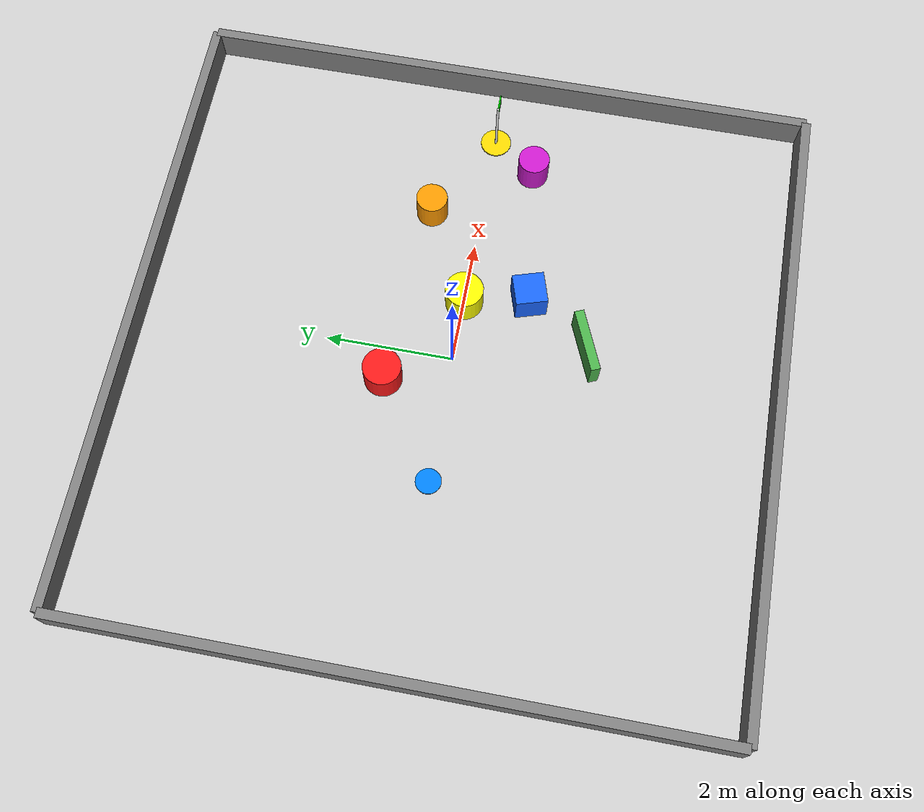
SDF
<?xml version="1.0" ?>
<sdf version="1.6">
  <world name="obstacle_world">

    <!-- Physics -->
    <physics type="ode">
      <max_step_size>0.001</max_step_size>
      <real_time_factor>1</real_time_factor>
    </physics>

    <!-- Lighting -->
    <include>
      <uri>model://sun</uri>
    </include>

    <!-- Ground plane -->
    <include>
      <uri>model://ground_plane</uri>
    </include>

    <!-- ============ Boundary walls ============ -->
    <!-- North wall -->
    <model name="wall_north">
      <static>true</static>
      <pose>0 5 0.25 0 0 0</pose>
      <link name="link">
        <collision name="collision">
          <geometry><box><size>10 0.15 0.5</size></box></geometry>
        </collision>
        <visual name="visual">
          <geometry><box><size>10 0.15 0.5</size></box></geometry>
          <material>
            <ambient>0.5 0.5 0.5 1</ambient>
          </material>
        </visual>
      </link>
    </model>

    <!-- South wall -->
    <model name="wall_south">
      <static>true</static>
      <pose>0 -5 0.25 0 0 0</pose>
      <link name="link">
        <collision name="collision">
          <geometry><box><size>10 0.15 0.5</size></box></geometry>
        </collision>
        <visual name="visual">
          <geometry><box><size>10 0.15 0.5</size></box></geometry>
          <material>
            <ambient>0.5 0.5 0.5 1</ambient>
          </material>
        </visual>
      </link>
    </model>

    <!-- East wall -->
    <model name="wall_east">
      <static>true</static>
      <pose>5 0 0.25 0 0 1.5708</pose>
      <link name="link">
        <collision name="collision">
          <geometry><box><size>10 0.15 0.5</size></box></geometry>
        </collision>
        <visual name="visual">
          <geometry><box><size>10 0.15 0.5</size></box></geometry>
          <material>
            <ambient>0.5 0.5 0.5 1</ambient>
          </material>
        </visual>
      </link>
    </model>

    <!-- West wall -->
    <model name="wall_west">
      <static>true</static>
      <pose>-5 0 0.25 0 0 1.5708</pose>
      <link name="link">
        <collision name="collision">
          <geometry><box><size>10 0.15 0.5</size></box></geometry>
        </collision>
        <visual name="visual">
          <geometry><box><size>10 0.15 0.5</size></box></geometry>
          <material>
            <ambient>0.5 0.5 0.5 1</ambient>
          </material>
        </visual>
      </link>
    </model>

    <!-- ============ Goal marker (visible flag at goal) ============ -->
    <model name="goal_flag">
      <static>true</static>
      <pose>4.0 0.0 0 0 0 0</pose>
      <link name="link">
        <!-- Pole -->
        <visual name="pole">
          <pose>0 0 0.5 0 0 0</pose>
          <geometry><cylinder><radius>0.02</radius><length>1.0</length></cylinder></geometry>
          <material>
            <ambient>0.9 0.9 0.9 1</ambient>
            <diffuse>0.9 0.9 0.9 1</diffuse>
            <emissive>0.3 0.3 0.3 1</emissive>
          </material>
        </visual>
        <!-- Flag -->
        <visual name="flag">
          <pose>0.15 0 0.85 0 0 0</pose>
          <geometry><box><size>0.3 0.02 0.2</size></box></geometry>
          <material>
            <ambient>0.0 1.0 0.0 1</ambient>
            <diffuse>0.0 1.0 0.0 1</diffuse>
            <emissive>0.0 0.6 0.0 1</emissive>
          </material>
        </visual>
        <!-- Base disc -->
        <visual name="base">
          <pose>0 0 0.01 0 0 0</pose>
          <geometry><cylinder><radius>0.25</radius><length>0.02</length></cylinder></geometry>
          <material>
            <ambient>1.0 0.84 0.0 1</ambient>
            <diffuse>1.0 0.84 0.0 1</diffuse>
            <emissive>0.5 0.42 0.0 1</emissive>
          </material>
        </visual>
      </link>
    </model>

    <!-- ============ Start position marker ============ -->
    <model name="start_marker">
      <static>true</static>
      <pose>-2.0 0.0 0.01 0 0 0</pose>
      <link name="link">
        <visual name="visual">
          <geometry><cylinder><radius>0.2</radius><length>0.02</length></cylinder></geometry>
          <material>
            <ambient>0.0 0.5 1.0 1</ambient>
            <diffuse>0.0 0.5 1.0 1</diffuse>
            <emissive>0.0 0.3 0.6 1</emissive>
          </material>
        </visual>
      </link>
    </model>

    <!-- ============ Static obstacles ============ -->
    <!-- Staggered layout: each obstacle blocks only one side so the robot
         can always weave around them.  Minimum ~1 m clear gap around each. -->

    <!-- Obstacle 1: cylinder (RED)  –  blocks NORTH of centerline -->
    <model name="obstacle_1">
      <static>true</static>
      <pose>-0.5 1.0 0.25 0 0 0</pose>
      <link name="link">
        <collision name="collision">
          <geometry><cylinder><radius>0.3</radius><length>0.5</length></cylinder></geometry>
        </collision>
        <visual name="visual">
          <geometry><cylinder><radius>0.3</radius><length>0.5</length></cylinder></geometry>
          <material>
            <ambient>1.0 0.1 0.1 1</ambient>
            <diffuse>1.0 0.1 0.1 1</diffuse>
            <emissive>0.4 0.0 0.0 1</emissive>
          </material>
        </visual>
      </link>
    </model>

    <!-- Obstacle 2: box (BLUE)  –  blocks SOUTH of centerline -->
    <model name="obstacle_2">
      <static>true</static>
      <pose>1.2 -1.0 0.25 0 0 0.3</pose>
      <link name="link">
        <collision name="collision">
          <geometry><box><size>0.5 0.5 0.5</size></box></geometry>
        </collision>
        <visual name="visual">
          <geometry><box><size>0.5 0.5 0.5</size></box></geometry>
          <material>
            <ambient>0.1 0.4 1.0 1</ambient>
            <diffuse>0.1 0.4 1.0 1</diffuse>
            <emissive>0.0 0.2 0.5 1</emissive>
          </material>
        </visual>
      </link>
    </model>

    <!-- Obstacle 3: cylinder (ORANGE)  –  blocks NORTH of centerline -->
    <model name="obstacle_3">
      <static>true</static>
      <pose>2.5 0.8 0.25 0 0 0</pose>
      <link name="link">
        <collision name="collision">
          <geometry><cylinder><radius>0.25</radius><length>0.5</length></cylinder></geometry>
        </collision>
        <visual name="visual">
          <geometry><cylinder><radius>0.25</radius><length>0.5</length></cylinder></geometry>
          <material>
            <ambient>1.0 0.6 0.0 1</ambient>
            <diffuse>1.0 0.6 0.0 1</diffuse>
            <emissive>0.5 0.3 0.0 1</emissive>
          </material>
        </visual>
      </link>
    </model>

    <!-- Obstacle 4: short wall (GREEN)  –  angled barrier south-west -->
    <model name="obstacle_4">
      <static>true</static>
      <pose>0.5 -2.0 0.25 0 0 0.4</pose>
      <link name="link">
        <collision name="collision">
          <geometry><box><size>1.0 0.15 0.5</size></box></geometry>
        </collision>
        <visual name="visual">
          <geometry><box><size>1.0 0.15 0.5</size></box></geometry>
          <material>
            <ambient>0.3 0.7 0.3 1</ambient>
            <diffuse>0.3 0.7 0.3 1</diffuse>
            <emissive>0.1 0.3 0.1 1</emissive>
          </material>
        </visual>
      </link>
    </model>

    <!-- Obstacle 5: cylinder (YELLOW)  –  blocks CENTER of path -->
    <model name="obstacle_5">
      <static>true</static>
      <pose>1.0 0.0 0.25 0 0 0</pose>
      <link name="link">
        <collision name="collision">
          <geometry><cylinder><radius>0.3</radius><length>0.5</length></cylinder></geometry>
        </collision>
        <visual name="visual">
          <geometry><cylinder><radius>0.3</radius><length>0.5</length></cylinder></geometry>
          <material>
            <ambient>1.0 1.0 0.0 1</ambient>
            <diffuse>1.0 1.0 0.0 1</diffuse>
            <emissive>0.5 0.5 0.0 1</emissive>
          </material>
        </visual>
      </link>
    </model>

    <!-- Obstacle 6: cylinder (PURPLE)  –  blocks SOUTH near goal -->
    <model name="obstacle_6">
      <static>true</static>
      <pose>3.5 -0.7 0.25 0 0 0</pose>
      <link name="link">
        <collision name="collision">
          <geometry><cylinder><radius>0.25</radius><length>0.5</length></cylinder></geometry>
        </collision>
        <visual name="visual">
          <geometry><cylinder><radius>0.25</radius><length>0.5</length></cylinder></geometry>
          <material>
            <ambient>0.8 0.1 0.8 1</ambient>
            <diffuse>0.8 0.1 0.8 1</diffuse>
            <emissive>0.4 0.0 0.4 1</emissive>
          </material>
        </visual>
      </link>
    </model>

  </world>
</sdf>
